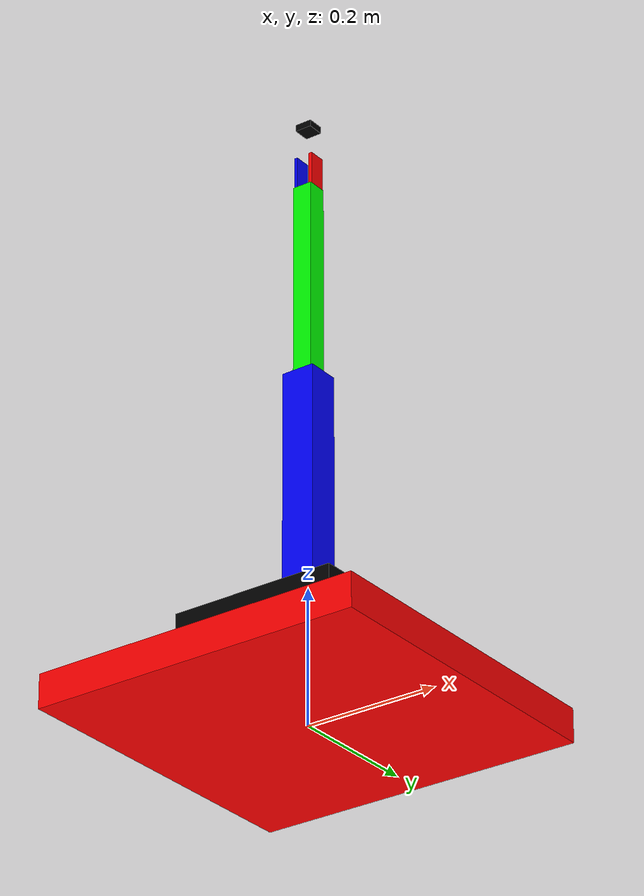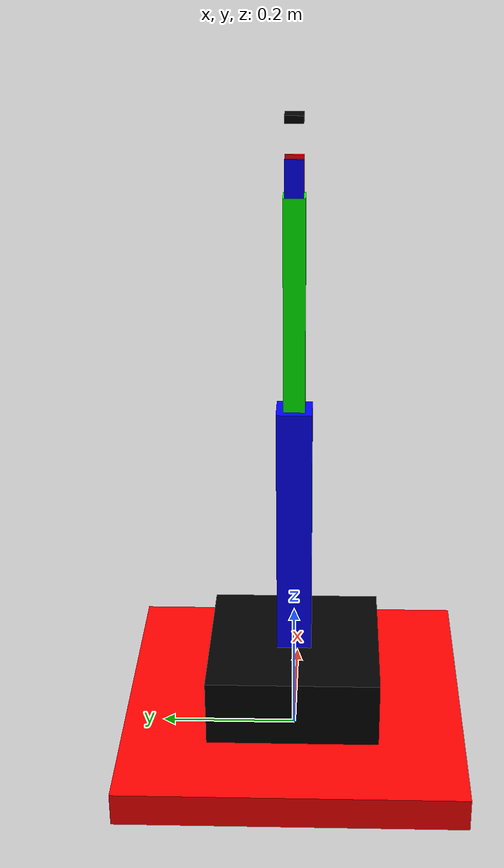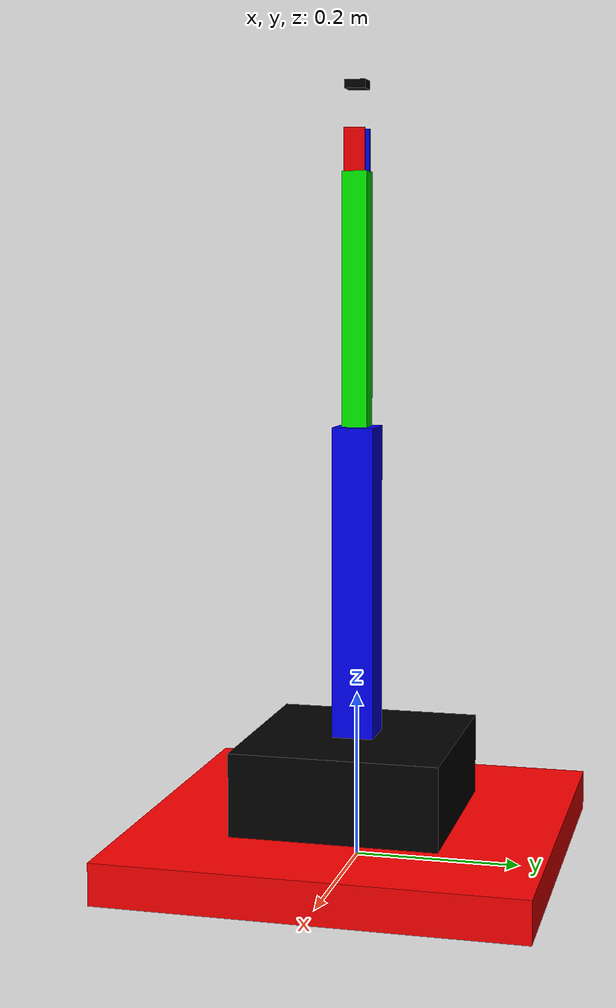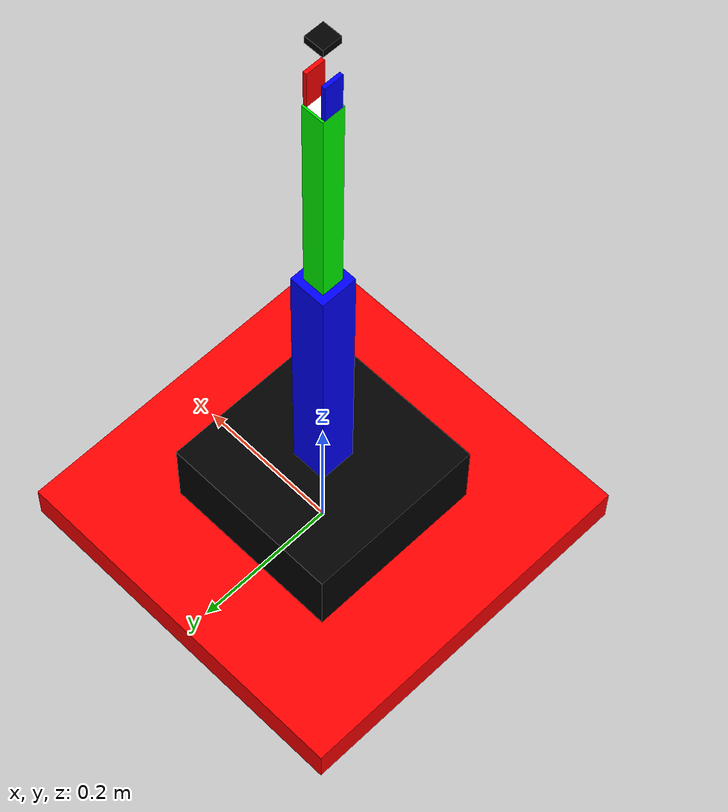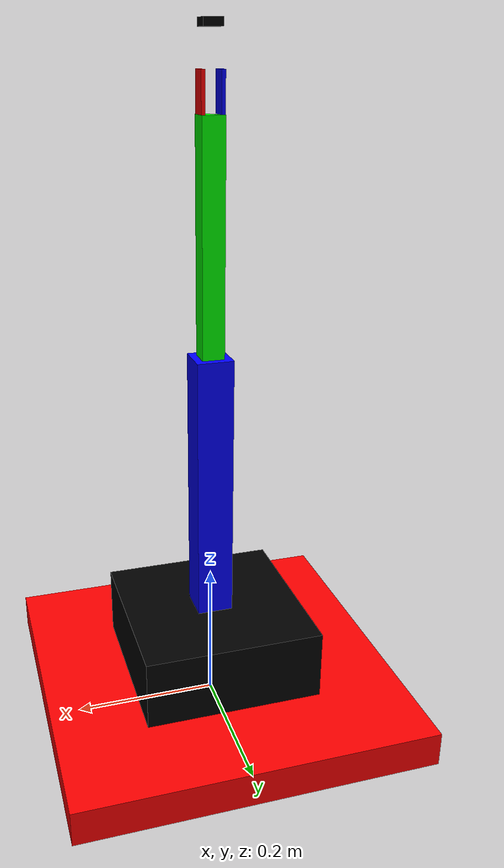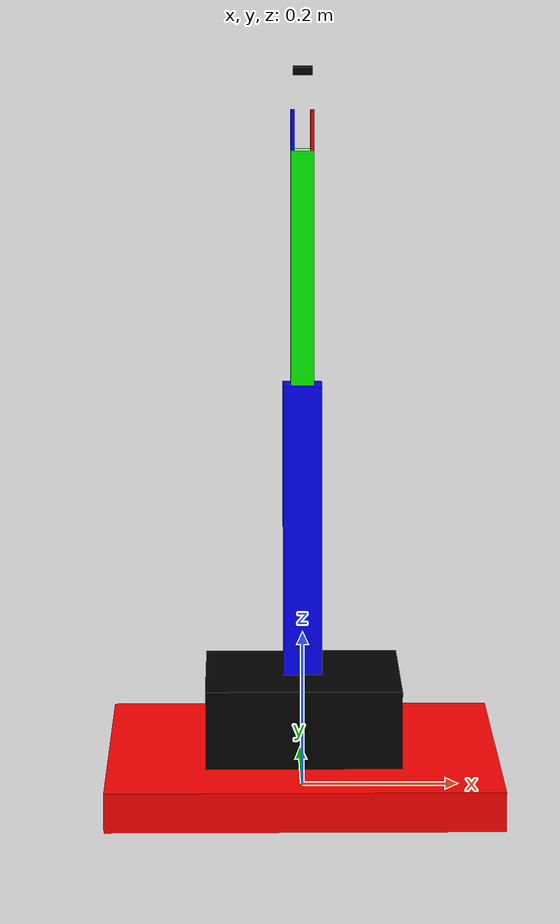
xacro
<?xml version="1.0"?>
<robot xmlns:xacro="http://ros.org/wiki/xacro" name="robot">

  <gazebo>
    <plugin name="gazebo_ros_control" filename="libgazebo_ros_control.so">
      <robotNamespace>/</robotNamespace>
    </plugin>
  </gazebo>

<xacro:macro name="default_inertial" params="mass">
    <inertial>
      <mass value="${mass}" />
      <inertia ixx="1.0" ixy="0.0" ixz="0.0" iyy="1.0" iyz="0.0" izz="1.0" />
    </inertial>
  </xacro:macro>

<xacro:property name="width" value="0.1" />

  <material name="black">
    <color rgba="0 0 0 1"/>
  </material>

  <material name="red">
    <color rgba="1 0 0 1"/>
  </material>

  <material name="blue">
    <color rgba="0 0 1 1"/>
  </material>

  <material name="green">
    <color rgba="0 1 0 1"/>
  </material>

  <material name="white">
    <color rgba="1 1 1 1"/>
  </material>

  <link name="base">
    <visual>
      <geometry>
        <box size="0.5 0.5 0.05"/>
      </geometry>
      <origin rpy="0 0 0" xyz="0 0 0.025"/>
      <material name="red"/>
    </visual>
    <collision>
      <geometry>
        <box size="0.5 0.5 0.05"/>
      </geometry>
    </collision>
    <xacro:default_inertial mass="5"/>
  </link>

  <joint name="base_joint" type="continuous">
    <axis xyz="0 0 1"/>
    <parent link="base"/>
    <child link="rot_base"/>
    <origin xyz="0.0 0.0 0.025" rpy="0.0 0.0 0.0"/>
  </joint>

  <transmission name="base_joint_trans">
    <type>transmission_interface/SimpleTransmission</type>
    <actuator name="$base_joint_motor">
      <mechanicalReduction>1</mechanicalReduction>
    </actuator>
    <joint name="base_joint">
      <hardwareInterface>PositionJointInterface</hardwareInterface>
    </joint>
  </transmission>

  <link name="rot_base">
    <visual>
      <geometry>
        <box size="0.25 0.25 0.1"/>
      </geometry>
      <origin xyz="0.0 0.0 0.075" rpy="0.0 0.0 0.0"/>
      <material name="black"/>
    </visual>
    <collision>
      <geometry>
        <box size="0.25 0.25 0.1"/>
      </geometry>
    </collision>
    <xacro:default_inertial mass="4"/>
  </link>

  <joint name="shoulder_joint" type="revolute">
  <limit lower="-1.1" upper="1.1" effort="30" velocity="1"/>
    <axis xyz="0 1 0"/>
    <parent link="rot_base"/>
    <child link="humerus"/>
    <origin xyz="0 0 0.1" rpy="0.0 0.0 0.0"/>
  </joint>

      <transmission name="shoulder_joint_trans">
    <type>transmission_interface/SimpleTransmission</type>
    <actuator name="$shoulder_joint_motor">
      <mechanicalReduction>1</mechanicalReduction>
    </actuator>
    <joint name="shoulder_joint">
      <hardwareInterface>PositionJointInterface</hardwareInterface>
    </joint>
  </transmission>

  <link name="humerus">
    <visual>
      <geometry>
        <box size="0.05 0.05 0.5"/>
      </geometry>
      <origin xyz="0.0 0.0 0.15" rpy="0.0 0.0 0.0"/>
      <material name="blue"/>
    </visual>
    <collision>
      <geometry>
        <box size="0.05 0.05 0.5"/>
      </geometry>
    </collision>
    <xacro:default_inertial mass="3"/>
  </link>

  <joint name="elbow_joint" type="revolute">
  <limit lower="-2" upper="2" effort="30" velocity="1"/>
    <axis xyz="0 1 0"/>
    <parent link="humerus"/>
    <child link="forearm"/>
    <origin xyz="0 0 0.4" rpy="0.0 0.0 0.0"/>
  </joint>

   <transmission name="elbow_joint_trans">
    <type>transmission_interface/SimpleTransmission</type>
    <actuator name="$elbow_joint_motor">
      <mechanicalReduction>1</mechanicalReduction>
    </actuator>
    <joint name="elbow_joint">
      <hardwareInterface>PositionJointInterface</hardwareInterface>
    </joint>
  </transmission>

  <link name="forearm">
    <visual>
      <geometry>
        <box size="0.03 0.03 0.3"/>
      </geometry>
      <origin xyz="0.0 0.0 0.15" rpy="0.0 0.0 0.0"/>
      <material name="green"/>
    </visual>
    <collision>
      <geometry>
        <box size="0.03 0.03 0.3"/>
      </geometry>
    </collision>
    <xacro:default_inertial mass="3"/>
  </link>

  <joint name="extend_joint" type="prismatic">
  <limit lower="0" upper="0.2" effort="30" velocity="1"/>
    <axis xyz="0 0 1"/>
    <parent link="forearm"/>
    <child link="wrist"/>
    <origin xyz="0 0 0.4" rpy="0.0 0.0 0.0"/>
  </joint>

      <transmission name="extend_joint_trans">
    <type>transmission_interface/SimpleTransmission</type>
    <actuator name="$extend_joint_motor">
      <mechanicalReduction>1</mechanicalReduction>
    </actuator>
    <joint name="extend_joint">
      <hardwareInterface>PositionJointInterface</hardwareInterface>
    </joint>
  </transmission>

  <link name="wrist">
    <visual>
      <geometry>
        <box size="0.025 0.025 0.3"/>
      </geometry>
      <origin xyz="0.0 0.0 -0.25" rpy="0.0 0.0 0.0"/>
      <material name="white"/>
    </visual>
    <collision>
      <geometry>
        <box size="0.025 0.025 0.3"/>
      </geometry>
    </collision>
    <xacro:default_inertial mass="2"/>
  </link>

<link name="finger_turner">
    <visual>
      <geometry>
        <box size="0.025 0.025 0.01"/>
      </geometry>
      <origin xyz="0.0 0.0 0" rpy="0.0 0.0 0.0"/>
      <material name="black"/>
    </visual>
    <collision>
      <geometry>
        <box size="0.025 0.025 0.01"/>
      </geometry>
    </collision>
    <xacro:default_inertial mass="0.1"/>
  </link>

  <joint name="finger_turner_joint" type="continuous">
    <axis xyz="0 0 1"/>
    <parent link="wrist"/>
    <child link="finger_turner"/>
    <origin xyz="0 0 0" rpy="0.0 0.0 0.0"/>
  </joint>

   <transmission name="finger_turner_joint_trans">
    <type>transmission_interface/SimpleTransmission</type>
    <actuator name="$finger_turner_joint_motor">
      <mechanicalReduction>1</mechanicalReduction>
    </actuator>
    <joint name="finger_turner_joint">
      <hardwareInterface>PositionJointInterface</hardwareInterface>
    </joint>
  </transmission>

  <joint name="left_finger_joint" type="prismatic">
  <limit lower="0" upper="0.01" effort="30" velocity="1"/>
    <axis xyz="1 0 0"/>
    <parent link="finger_turner"/>
    <child link="left_finger"/>
    <origin xyz="0 0 0" rpy="0.0 0.0 0.0"/>
  </joint>

    <transmission name="left_finger_joint_trans">
    <type>transmission_interface/SimpleTransmission</type>
    <actuator name="$left_finger_joint_motor">
      <mechanicalReduction>1</mechanicalReduction>
    </actuator>
    <joint name="left_finger_joint">
      <hardwareInterface>PositionJointInterface</hardwareInterface>
    </joint>
  </transmission>

  <link name="left_finger">
    <visual>
      <geometry>
        <box size="0.005 0.025 0.05"/>
      </geometry>
      <origin xyz="-0.0125 0.0 -0.075" rpy="0.0 0.0 0.0"/>
      <material name="blue"/>
    </visual>
    <collision>
      <geometry>
        <box size="0.005 0.025 0.05"/>
      </geometry>
    </collision>
    <xacro:default_inertial mass="0.5"/>
  </link>

  <joint name="right_finger_joint" type="prismatic">
    <limit lower="-0.01" upper="0" effort="30" velocity="1"/>
    <axis xyz="1 0 0"/>
    <parent link="finger_turner"/>
    <child link="right_finger"/>
    <origin xyz="0 0 0" rpy="0.0 0.0 0.0"/>
  </joint>

<transmission name="right_finger_joint_trans">
    <type>transmission_interface/SimpleTransmission</type>
    <actuator name="$right_finger_joint_motor">
      <mechanicalReduction>1</mechanicalReduction>
    </actuator>
    <joint name="right_finger_joint">
      <hardwareInterface>PositionJointInterface</hardwareInterface>
    </joint>
  </transmission>

  <link name="right_finger">
    <visual>
      <geometry>
        <box size="0.005 0.025 0.05"/>
      </geometry>
      <origin xyz="0.0125 0.0 -0.075" rpy="0.0 0.0 0.0"/>
      <material name="red"/>
    </visual>
    <collision>
      <geometry>
        <box size="0.005 0.025 0.05"/>
      </geometry>
    </collision>
    <xacro:default_inertial mass="0.5"/>
  </link>

</robot>
